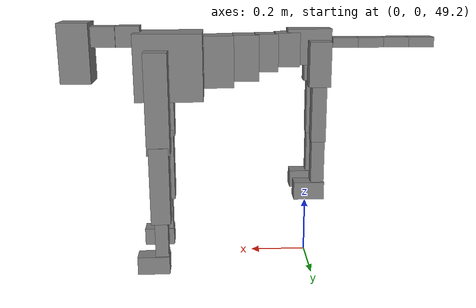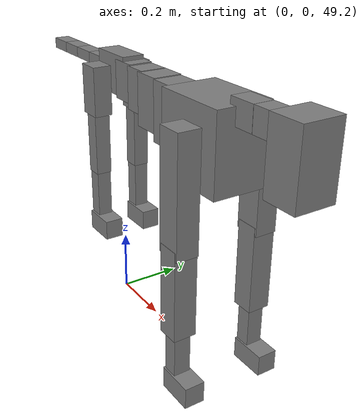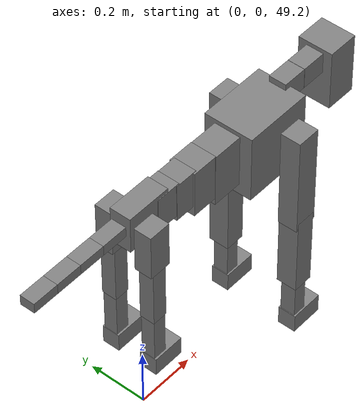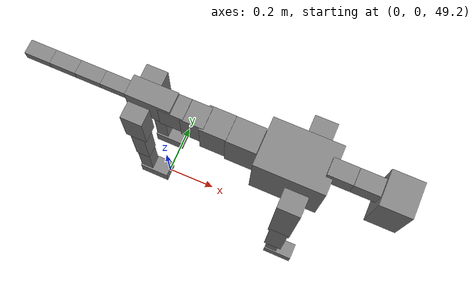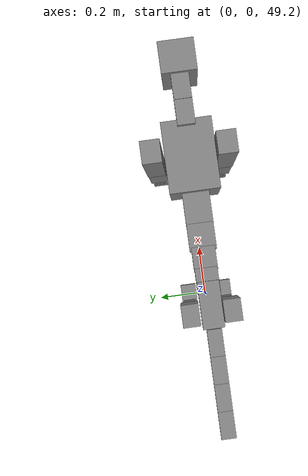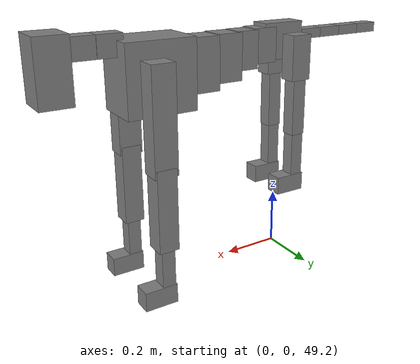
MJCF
<mujoco model="dog">

    <default>
        <joint armature="0.02" stiffness="1" damping="0.2" limited="true"/>
        <geom condim="3" friction="1 0.05 0.05" margin="0.01"/>
        <motor ctrllimited="true" ctrlrange="-1.0 1.0" forcelimited="true" gear="50"/>
    </default>

    <compiler inertiafromgeom="true" angle="radian"/>

    <option timestep="0.016" iterations="50" tolerance="1e-10" solver="Newton" jacobian="dense" cone="pyramidal"/>

    <size nconmax="20000" njmax="60000" nstack="5000000"/>
    <visual>
        <map force="0.1" zfar="30"/>
        <rgba haze="0.15 0.25 0.35 1"/>
        <quality shadowsize="2048"/>
        <global offwidth="800" offheight="800"/>
    </visual>

    <asset>
        <texture type="skybox" builtin="gradient" rgb1="0.3 0.5 0.7" rgb2="0 0 0" width="512" height="512"/>
        <texture name="texplane" type="2d" builtin="checker" rgb1=".2 .3 .4" rgb2=".1 0.15 0.2" width="512" height="512"
                 mark="cross" markrgb=".8 .8 .8"/>
        <texture name="texgeom" type="cube" builtin="flat" mark="cross" width="127" height="1278" rgb1="0.8 0.6 0.4"
                 rgb2="0.8 0.6 0.4" markrgb="1 1 1" random="0.01"/>

        <material name="matplane" reflectance="0.3" texture="texplane" texrepeat="1 1" texuniform="true"/>
        <material name="matgeom" texture="texgeom" texuniform="true" rgba="0.8 0.6 .4 1"/>
    </asset>

    <worldbody>
        <geom name="floor" pos="0 0 0" size="0 0 .25" type="plane" material="matplane" condim="3"/>

        <light directional="false" diffuse=".2 .2 .2" specular="0 0 0" pos="0 0 5" dir="0 0 -1" castshadow="false"/>
        <light mode="targetbodycom" target="torso" directional="false" diffuse=".8 .8 .8" specular="0.3 0.3 0.3"
               pos="0 0 4.0" dir="0 0 -1"/>

        <body name="root" pos="0 0 50">
            <freejoint name="root_1"/>
            <geom type="box" pos="0 0 -0.02" size="0.0774  0.0358  0.063" density="2030"/>

            <body name="spine1" pos="0.054 0 0">
                <joint name="spine1_y" axis="0 1 0" range="0 0.7" limited="true"/>
                <geom type="box" pos="0.02375 0 -0.03" size="0.04375  0.0375  0.05985" density="2030"/>

                <body name="spine2" pos="0.0612 0 0">
                    <joint name="spine2_y" axis="0 1 0" range="-0.15 0.15" limited="true"/>
                    <geom type="box" pos="0.03555  0  -0.04" size="0.04055  0.039  0.06615" density="2030"/>

                    <body name="spine3" pos="0.0730 0 0">
                        <joint name="spine3_y" axis="0 1 0" range="-0.15 0.15" limited="true"/>
                        <geom type="box" pos="0.03555  0  -0.057" size="0.04555  0.0445  0.081" density="2030"/>

                        <body name="spine4" pos="0.0780 0 0">
                            <joint name="spine4_y" axis="0 1 0" range="-0.15 0.15" limited="true"/>
                            <geom type="box" pos="0.05265  0  -0.07" size="0.05265  0.045  0.09135" density="2030"/>

                            <body name="torso" pos="0.1082 0 0">
                                <joint name="torso_y" axis="0 1 0" range="-0.15 0.15" limited="true"/>
                                <geom type="box" pos="0.11925  0  -0.085" size="0.11925  0.085  0.11745"
                                      density="2030"/>

                                <body name="neck1" pos="0.2160  0   0.0180">
                                    <joint name="neck1_y" axis="0 1 0" range="-1.2  -1" limited="true"/>
                                    <geom type="box" pos="0.0423  0  0" size="0.0423  0.03  0.036" density="2325"/>

                                    <body name="neck2" pos="0.0853  0  0">
                                        <joint name="neck2_y" axis="0 1 0" range="0.1  0" limited="true"/>
                                        <geom type="box" pos="0.0423  0  0" size="0.0423  0.03  0.036" density="2325"/>

                                        <body name="head" pos="0.0853  0  0">
                                            <joint name="head_y" axis="0 1 0" range="-0.3  -0.2" limited="true"/>
                                            <geom type="box" pos="0.0531  0  -0.055" size="0.0531  0.06  0.1044"
                                                  density="4030"/>

                                        </body>
                                    </body>
                                </body>

                                <body name="front_shoulder" pos="0.156  0   -0.0480">
                                    <joint name="front_shoulder_y" axis="0 1 0" range="-1 1.5" limited="true"/>
                                    <geom type="box" pos="0 0.13 -0.1490" size="0.0402  0.0344  0.1757" density="1158"/>
                                    <geom type="box" pos="0 -0.13 -0.1490" size="0.0402  0.0344  0.1757"
                                          density="1158"/>

                                    <body name="front_elbow" pos="0  0  -0.2981">
                                        <joint name="front_elbow_y" axis="0 1 0" range="-2 0" limited="true"/>
                                        <geom type="box" pos="0 0.13 -0.1391" size="0.0345  0.0353  0.1391"
                                              density="1081"/>
                                        <geom type="box" pos="0 -0.13 -0.1391" size="0.0345  0.0353  0.1391"
                                              density="1081"/>

                                        <body name="front_wrist" pos="0  0  -0.2781">
                                            <joint name="front_wrist_y" axis="0 1 0" range="-0.2 0" limited="true"/>
                                            <geom type="box" pos="0 0.13 -0.0711" size="0.0234  0.0260  0.0843"
                                                  density="1664"/>
                                            <geom type="box" pos="0 -0.13 -0.0711" size="0.0234  0.0260  0.0843"
                                                  density="1664"/>

                                            <body name="front_finger_end" pos="0  0  -0.1422">
                                                <joint name="front_finger_y" axis="0 1 0" range="-0.4 1"
                                                       limited="true"/>
                                                <geom type="box" pos="0.0312  0.13  -0.0181"
                                                      size="0.0572  0.0312  0.0331" density="1515"/>
                                                <geom type="box" pos="0.0312  -0.13  -0.0181"
                                                      size="0.0572  0.0312  0.0331" density="1515"/>

                                            </body>

                                        </body>
                                    </body>
                                </body>

                            </body>
                        </body>
                    </body>
                </body>
            </body>

            <body name="back_hip" pos="-0.03 0 -0.018">
                <joint name="back_hip_y" axis="0 1 0" range="-1.5 0.3" limited="true"/>
                <geom type="box" pos="0 0.07 -0.0556" size="0.0377  0.0296  0.0784" density="1154"/>
                <geom type="box" pos="0 -0.07 -0.0556" size="0.0377  0.0296  0.0784" density="1154"/>

                <body name="back_knee" pos="0  0  -0.1112">
                    <joint name="back_knee_y" axis="0 1 0" range="0 2.8" limited="true"/>
                    <geom type="box" pos="0 0.07 -0.1021" size="0.0257  0.0253  0.1177" density="1227"/>
                    <geom type="box" pos="0 -0.07 -0.1021" size="0.0257  0.0253  0.1177" density="1227"/>

                    <body name="back_ankle" pos="0  0  -0.2043">
                        <joint name="back_ankle_y" axis="0 1 0" range="-2.2 0" limited="true"/>
                        <geom type="box" pos="0 0.07 -0.0899" size="0.0233  0.0233  0.1012" density="1284"/>
                        <geom type="box" pos="0 -0.07 -0.0899" size="0.0233  0.0233  0.1012" density="1284"/>

                        <body name="back_toe_end" pos="0  0  -0.1799">
                            <joint name="back_toe_y" axis="0 1 0" range="-0.4 1" limited="true"/>
                            <geom type="box" pos="0.0297  0.07  -0.0168" size="0.0544  0.0297  0.0318" density="1515"/>
                            <geom type="box" pos="0.0297  -0.07  -0.0168" size="0.0544  0.0297  0.0318" density="1515"/>

                        </body>
                    </body>
                </body>
            </body>

            <body name="tail1" pos="-0.074 0 -0.006">
                <joint name="tail1_y" axis="0 1 0" range="-0.2 0.2" limited="true"/>
                <geom type="box" pos="-0.0536  0  0" size="0.045  0.025  0.0175" density="1587"/>

                <body name="tail2" pos="-0.09 0 0">
                    <joint name="tail2_y" axis="0 1 0" range="-0.2 0.2" limited="true"/>
                    <geom type="box" pos="-0.0536  0  0" size="0.045  0.025  0.0175" density="1587"/>

                    <body name="tail3" pos="-0.09 0 0">
                        <joint name="tail3_y" axis="0 1 0" range="-0.2 0.2" limited="true"/>
                        <geom type="box" pos="-0.0536  0  0" size="0.045  0.025  0.0175" density="1587"/>

                        <body name="tail4" pos="-0.09 0 0">
                            <joint name="tail4_y" axis="0 1 0" range="-0.2 0.2" limited="true"/>
                            <geom type="box" pos="-0.0536  0  0" size="0.045  0.025  0.0175" density="1587"/>

                        </body>
                    </body>
                </body>
            </body>
        </body>
    </worldbody>

    <actuator>
        <motor joint="spine1_y" forcerange="-150 150     "/>
        <motor joint="spine2_y" forcerange="-150 150     "/>
        <motor joint="spine3_y" forcerange="-150 150     "/>
        <motor joint="spine4_y" forcerange="-150 150     "/>
        <motor joint="torso_y" forcerange="-150 150     "/>
        <motor joint="neck1_y" forcerange="-100 100       "/>
        <motor joint="neck2_y" forcerange="-100 100       "/>
        <motor joint="head_y" forcerange="-150 150       "/>
        <motor joint="front_shoulder_y" forcerange="-187.87 141.38"/>
        <motor joint="front_elbow_y" forcerange="-196.22 160.51"/>
        <motor joint="front_wrist_y" forcerange="-120.89 87.30"/>
        <motor joint="front_finger_y" forcerange="-55.02 71.28"/>
        <motor joint="back_hip_y" forcerange="-234.38 360.08"/>
        <motor joint="back_knee_y" forcerange="-295.45 272.98"/>
        <motor joint="back_angle_y" forcerange="-53.70 219.49"/>
        <motor joint="back_toe_y" forcerange="-126.12 31.28"/>
        <motor joint="tail1_y" forcerange="-50 50     "/>
        <motor joint="tail2_y" forcerange="-50 50     "/>
        <motor joint="tail3_y" forcerange="-50 50     "/>
        <motor joint="tail4_y" forcerange="-50 50     "/>
    </actuator>
</mujoco>
